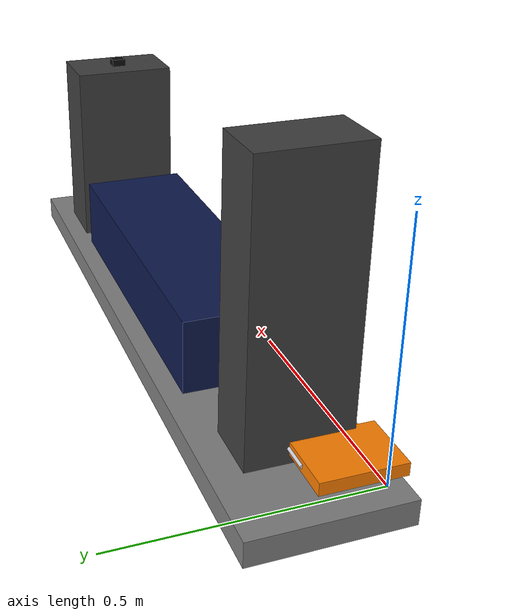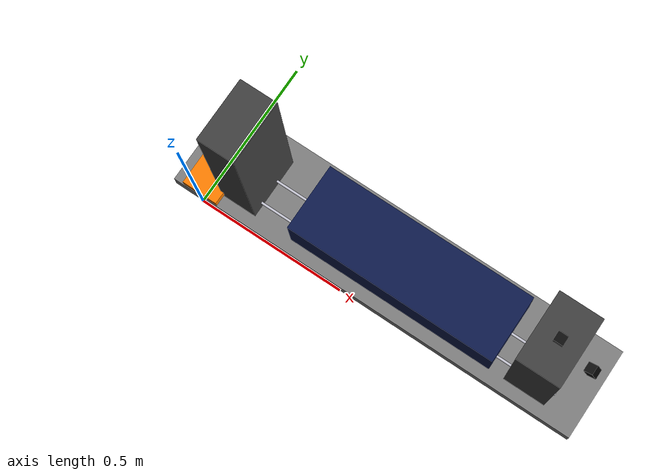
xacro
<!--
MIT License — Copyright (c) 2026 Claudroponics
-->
<?xml version="1.0"?>
<robot name="hydroponics_module" xmlns:xacro="http://www.ros.org/wiki/xacro">

  <!-- ====================================================================
       Properties
       ==================================================================== -->
  <!-- Physical dimensions (meters) -->
  <xacro:property name="rail_length"          value="1.2"/>   <!-- ~4 ft rod length -->
  <xacro:property name="frame_depth"          value="0.30"/>  <!-- Y depth of base -->
  <xacro:property name="frame_height"         value="0.05"/>  <!-- base board thickness -->

  <xacro:property name="grow_channel_length"  value="0.70"/>
  <xacro:property name="grow_channel_width"   value="0.22"/>
  <xacro:property name="grow_channel_height"  value="0.15"/>
  <xacro:property name="grow_channel_x"       value="0.30"/>  <!-- offset from rail home -->

  <xacro:property name="carriage_length"      value="0.12"/>
  <xacro:property name="carriage_width"       value="0.16"/>
  <xacro:property name="carriage_height"      value="0.025"/>
  <xacro:property name="carriage_z"           value="0.08"/>  <!-- height above base -->

  <xacro:property name="work_station_x"       value="0.05"/>  <!-- near rail home -->
  <xacro:property name="work_station_width"   value="0.12"/>
  <xacro:property name="work_station_depth"   value="0.20"/>
  <xacro:property name="work_station_height"  value="0.55"/>

  <xacro:property name="z_carriage_size"      value="0.08"/>
  <xacro:property name="z_travel"             value="0.20"/>

  <xacro:property name="inspection_x"         value="1.05"/>  <!-- near rail end -->
  <xacro:property name="inspection_width"     value="0.14"/>
  <xacro:property name="inspection_depth"     value="0.22"/>
  <xacro:property name="inspection_height"    value="0.40"/>

  <xacro:property name="camera_size"          value="0.03"/>

  <!-- ====================================================================
       Materials
       ==================================================================== -->
  <material name="grey">
    <color rgba="0.5 0.5 0.5 1.0"/>
  </material>
  <material name="dark_grey">
    <color rgba="0.25 0.25 0.25 1.0"/>
  </material>
  <material name="silver">
    <color rgba="0.8 0.8 0.85 1.0"/>
  </material>
  <material name="orange">
    <color rgba="1.0 0.5 0.0 1.0"/>
  </material>
  <material name="blue_dark">
    <color rgba="0.05 0.1 0.3 1.0"/>
  </material>
  <material name="red">
    <color rgba="0.8 0.1 0.1 1.0"/>
  </material>
  <material name="black">
    <color rgba="0.05 0.05 0.05 1.0"/>
  </material>
  <material name="green">
    <color rgba="0.1 0.7 0.1 1.0"/>
  </material>

  <!-- ====================================================================
       BASE LINK (lumber frame base)
       ==================================================================== -->
  <link name="base_link">
    <visual>
      <origin xyz="${rail_length/2} ${frame_depth/2} ${frame_height/2}" rpy="0 0 0"/>
      <geometry>
        <box size="${rail_length + 0.2} ${frame_depth} ${frame_height}"/>
      </geometry>
      <material name="grey"/>
    </visual>
    <collision>
      <origin xyz="${rail_length/2} ${frame_depth/2} ${frame_height/2}" rpy="0 0 0"/>
      <geometry>
        <box size="${rail_length + 0.2} ${frame_depth} ${frame_height}"/>
      </geometry>
    </collision>
    <inertial>
      <mass value="5.0"/>
      <inertia ixx="0.1" ixy="0" ixz="0" iyy="0.5" iyz="0" izz="0.5"/>
    </inertial>
  </link>

  <link name="rail_link">
    <visual>
      <origin xyz="${rail_length/2} 0.04 0" rpy="0 ${pi/2} 0"/>
      <geometry>
        <cylinder radius="0.004" length="${rail_length}"/>
      </geometry>
      <material name="silver"/>
    </visual>
    <visual>
      <origin xyz="${rail_length/2} 0.12 0" rpy="0 ${pi/2} 0"/>
      <geometry>
        <cylinder radius="0.004" length="${rail_length}"/>
      </geometry>
      <material name="silver"/>
    </visual>
    <inertial>
      <mass value="0.5"/>
      <inertia ixx="0.001" ixy="0" ixz="0" iyy="0.01" iyz="0" izz="0.01"/>
    </inertial>
  </link>

  <joint name="rail_joint" type="fixed">
    <parent link="base_link"/>
    <child  link="rail_link"/>
    <origin xyz="0 0.04 ${carriage_z}" rpy="0 0 0"/>
  </joint>

  <link name="carriage_link">
    <visual>
      <origin xyz="0 0 0" rpy="0 0 0"/>
      <geometry>
        <box size="${carriage_length} ${carriage_width} ${carriage_height}"/>
      </geometry>
      <material name="orange"/>
    </visual>
    <collision>
      <origin xyz="0 0 0" rpy="0 0 0"/>
      <geometry>
        <box size="${carriage_length} ${carriage_width} ${carriage_height}"/>
      </geometry>
    </collision>
    <inertial>
      <mass value="0.3"/>
      <inertia ixx="0.001" ixy="0" ixz="0" iyy="0.001" iyz="0" izz="0.001"/>
    </inertial>
  </link>

  <!-- Prismatic joint — carriage slides along X (rail axis) -->
  <joint name="carriage_joint" type="prismatic">
    <parent link="rail_link"/>
    <child  link="carriage_link"/>
    <origin xyz="0 0.04 0" rpy="0 0 0"/>
    <axis   xyz="1 0 0"/>
    <limit  lower="0" upper="${rail_length}" effort="20" velocity="0.1"/>
  </joint>

  <!-- ====================================================================
       GROW CHANNEL LINK (the DWC tote)
       ==================================================================== -->
  <link name="grow_channel_link">
    <visual>
      <origin xyz="${grow_channel_length/2} ${grow_channel_width/2} ${grow_channel_height/2}"
              rpy="0 0 0"/>
      <geometry>
        <box size="${grow_channel_length} ${grow_channel_width} ${grow_channel_height}"/>
      </geometry>
      <material name="blue_dark"/>
    </visual>
    <collision>
      <origin xyz="${grow_channel_length/2} ${grow_channel_width/2} ${grow_channel_height/2}"
              rpy="0 0 0"/>
      <geometry>
        <box size="${grow_channel_length} ${grow_channel_width} ${grow_channel_height}"/>
      </geometry>
    </collision>
    <inertial>
      <mass value="3.0"/>
      <inertia ixx="0.05" ixy="0" ixz="0" iyy="0.1" iyz="0" izz="0.1"/>
    </inertial>
  </link>

  <joint name="grow_channel_joint" type="fixed">
    <parent link="base_link"/>
    <child  link="grow_channel_link"/>
    <origin xyz="${grow_channel_x} 0.04 ${frame_height}" rpy="0 0 0"/>
  </joint>

  <!-- ====================================================================
       WORK STATION LINK (frame + Z column)
       ==================================================================== -->
  <link name="work_station_link">
    <visual>
      <origin xyz="${work_station_width/2} ${work_station_depth/2} ${work_station_height/2}"
              rpy="0 0 0"/>
      <geometry>
        <box size="${work_station_width} ${work_station_depth} ${work_station_height}"/>
      </geometry>
      <material name="dark_grey"/>
    </visual>
    <inertial>
      <mass value="2.0"/>
      <inertia ixx="0.05" ixy="0" ixz="0" iyy="0.05" iyz="0" izz="0.02"/>
    </inertial>
  </link>

  <joint name="work_station_joint" type="fixed">
    <parent link="base_link"/>
    <child  link="work_station_link"/>
    <origin xyz="${work_station_x} 0.04 ${frame_height}" rpy="0 0 0"/>
  </joint>

  <!-- Z carriage (tool head — slides up/down on work station) -->
  <link name="work_station_z_link">
    <visual>
      <origin xyz="0 0 0" rpy="0 0 0"/>
      <geometry>
        <box size="${z_carriage_size} ${z_carriage_size} ${z_carriage_size}"/>
      </geometry>
      <material name="red"/>
    </visual>
    <inertial>
      <mass value="0.2"/>
      <inertia ixx="0.0001" ixy="0" ixz="0" iyy="0.0001" iyz="0" izz="0.0001"/>
    </inertial>
  </link>

  <joint name="work_station_z_joint" type="prismatic">
    <parent link="work_station_link"/>
    <child  link="work_station_z_link"/>
    <origin xyz="${work_station_width/2} ${work_station_depth/2} ${work_station_height * 0.7}"
            rpy="0 0 0"/>
    <axis   xyz="0 0 1"/>
    <limit  lower="${-z_travel}" upper="0" effort="10" velocity="0.05"/>
  </joint>

  <!-- ====================================================================
       INSPECTION STATION LINK
       ==================================================================== -->
  <link name="inspection_station_link">
    <visual>
      <origin xyz="${inspection_width/2} ${inspection_depth/2} ${inspection_height/2}"
              rpy="0 0 0"/>
      <geometry>
        <box size="${inspection_width} ${inspection_depth} ${inspection_height}"/>
      </geometry>
      <material name="dark_grey"/>
    </visual>
    <inertial>
      <mass value="1.5"/>
      <inertia ixx="0.03" ixy="0" ixz="0" iyy="0.03" iyz="0" izz="0.01"/>
    </inertial>
  </link>

  <joint name="inspection_station_joint" type="fixed">
    <parent link="base_link"/>
    <child  link="inspection_station_link"/>
    <origin xyz="${inspection_x} 0.04 ${frame_height}" rpy="0 0 0"/>
  </joint>

  <!-- Camera 1 — overhead -->
  <link name="camera1_link">
    <visual>
      <origin xyz="0 0 0" rpy="0 0 0"/>
      <geometry>
        <box size="${camera_size} ${camera_size} ${camera_size}"/>
      </geometry>
      <material name="black"/>
    </visual>
    <inertial>
      <mass value="0.1"/>
      <inertia ixx="0.0001" ixy="0" ixz="0" iyy="0.0001" iyz="0" izz="0.0001"/>
    </inertial>
  </link>

  <joint name="camera1_joint" type="fixed">
    <parent link="inspection_station_link"/>
    <child  link="camera1_link"/>
    <!-- Mounted overhead, pointing straight down -->
    <origin xyz="${inspection_width/2} ${inspection_depth/2} ${inspection_height}"
            rpy="0 ${pi/2} 0"/>
  </joint>

  <!-- Camera 2 — side angle (30° from horizontal) -->
  <link name="camera2_link">
    <visual>
      <origin xyz="0 0 0" rpy="0 0 0"/>
      <geometry>
        <box size="${camera_size} ${camera_size} ${camera_size}"/>
      </geometry>
      <material name="black"/>
    </visual>
    <inertial>
      <mass value="0.1"/>
      <inertia ixx="0.0001" ixy="0" ixz="0" iyy="0.0001" iyz="0" izz="0.0001"/>
    </inertial>
  </link>

  <joint name="camera2_joint" type="fixed">
    <parent link="inspection_station_link"/>
    <child  link="camera2_link"/>
    <!-- Mounted at side, 30° downward angle -->
    <origin xyz="${inspection_width + 0.05} ${inspection_depth/2} ${inspection_height * 0.7}"
            rpy="0 ${-pi/6} 0"/>
  </joint>

</robot>
